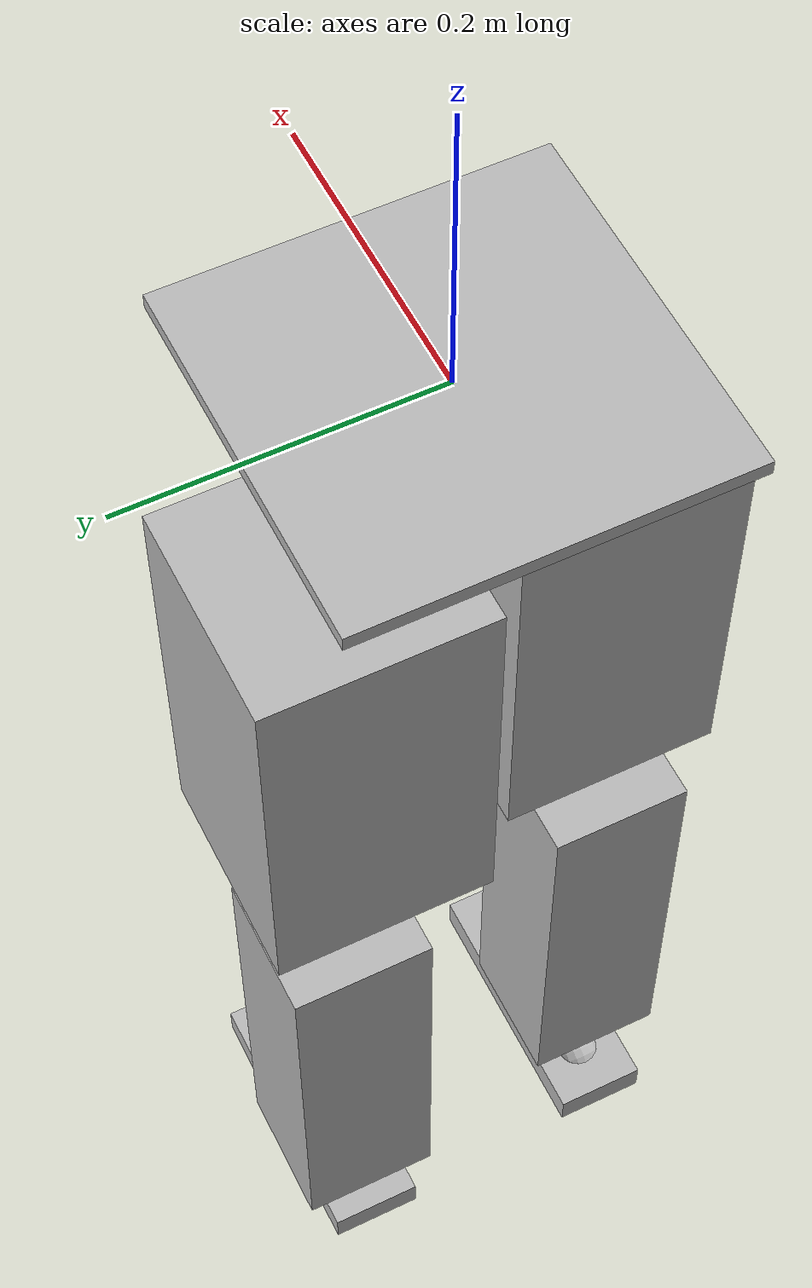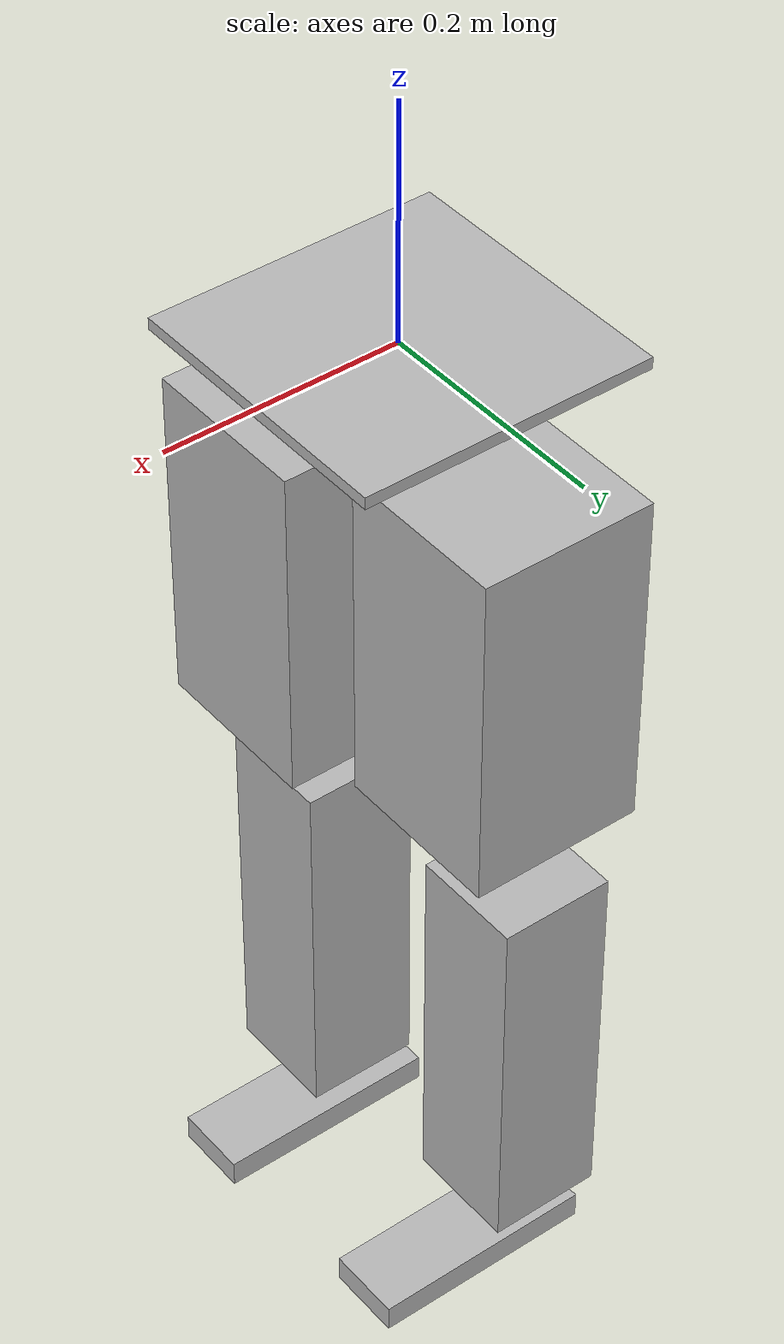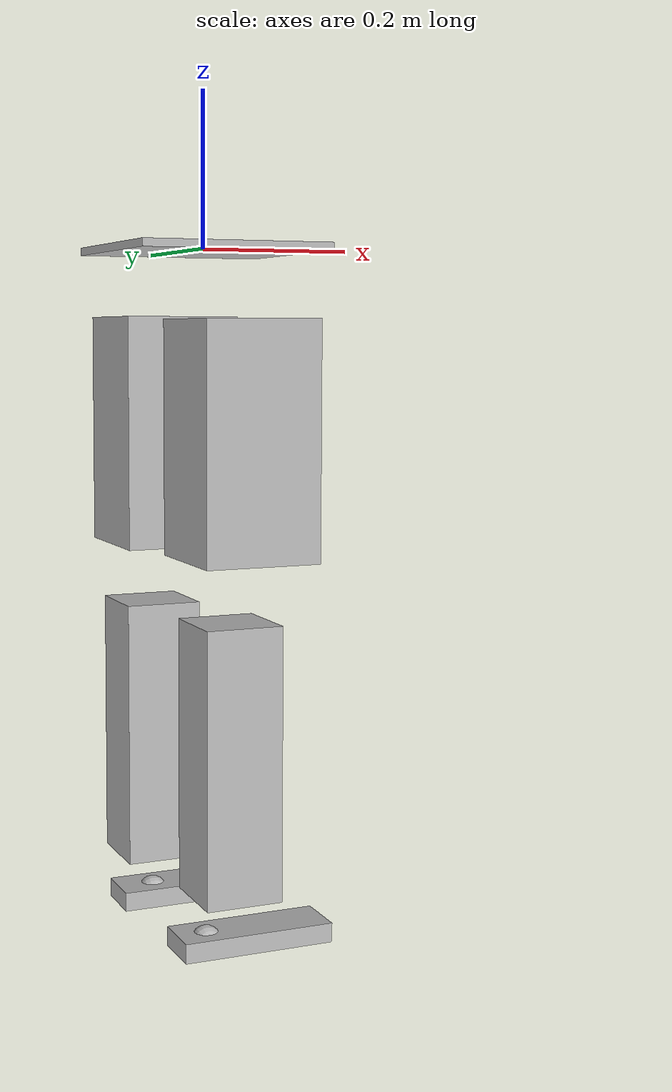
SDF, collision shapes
<sdf version='1.11'>
  <model name='oslsim'>
    <link name='base_link'>
      <inertial>
        <pose>0 0 0 0 0 0</pose>
        <mass>0.1</mass>
        <inertia>
          <ixx>9.9999999999999995e-08</ixx>
          <ixy>0</ixy>
          <ixz>0</ixz>
          <iyy>9.9999999999999995e-08</iyy>
          <iyz>0</iyz>
          <izz>9.9999999999999995e-08</izz>
        </inertia>
      </inertial>
    </link>
    <joint name='slider_joint' type='prismatic'>
      <pose relative_to='base_link'>0 0 0 0 0 0</pose>
      <parent>base_link</parent>
      <child>slider</child>
      <axis>
        <xyz>1 0 0</xyz>
        <limit>
          <lower>-10</lower>
          <upper>100</upper>
          <effort>1</effort>
          <velocity>1</velocity>
        </limit>
        <dynamics>
          <damping>0.050000000000000003</damping>
          <friction>0.10000000000000001</friction>
          <spring_reference>0</spring_reference>
          <spring_stiffness>0</spring_stiffness>
        </dynamics>
      </axis>
    </joint>
    <link name='slider'>
      <pose relative_to='slider_joint'>0 0 0 0 0 0</pose>
      <inertial>
        <pose>0 0 -0.04975124378109453 0 0 0</pose>
        <mass>0.20100000000000001</mass>
        <inertia>
          <ixx>0.001044254228855755</ixx>
          <ixy>0</ixy>
          <ixz>0</ixz>
          <iyy>0.001044254228855755</iyy>
          <iyz>0</iyz>
          <izz>0.0010417666666667001</izz>
        </inertia>
      </inertial>
      <collision name='slider_collision'>
        <pose>0 0 0 0 0 0</pose>
        <geometry>
          <box>
            <size>0.25 0.25 0.01</size>
          </box>
        </geometry>
      </collision>
    </link>
    <joint name='hip' type='revolute'>
      <pose relative_to='slider'>-0.029999999999999999 -0.014999999999999999 -0.050000000000000003 0 0 0</pose>
      <parent>slider</parent>
      <child>thigh</child>
      <axis>
        <xyz>-0.029999999999999999 1 0</xyz>
        <limit>
          <lower>-1.5700000000000001</lower>
          <upper>1.5700000000000001</upper>
          <effort>1</effort>
          <velocity>100</velocity>
        </limit>
        <dynamics>
          <damping>0.5</damping>
          <friction>0.5</friction>
          <spring_reference>0</spring_reference>
          <spring_stiffness>0</spring_stiffness>
        </dynamics>
      </axis>
    </joint>
    <link name='thigh'>
      <pose relative_to='hip'>0 0 0 0 0 0</pose>
      <inertial>
        <pose>0.0079000000000000008 0.105 -0.18514 1.5708 0 0</pose>
        <mass>0.55796999999999997</mass>
        <inertia>
          <ixx>0.045100000000000001</ixx>
          <ixy>-0.0023863000000000001</ixy>
          <ixz>0.00041502999999999999</ixz>
          <iyy>0.017843000000000001</iyy>
          <iyz>-0.00079007999999999997</iyz>
          <izz>0.046937</izz>
        </inertia>
      </inertial>
      <collision name='thigh_collision'>
        <pose>0.0079000000000000008 0.105 -0.18514 1.5708 0 0</pose>
        <geometry>
          <box>
            <size>0.14999999999999999 0.29999999999999999 0.14999999999999999</size>
          </box>
        </geometry>
      </collision>
      <visual name='thigh_visual'>
        <pose>0 0 -0.0040000000000000001 0 0 0</pose>
        <geometry>
          <mesh>
            <scale>1 1 1</scale>
            <uri>/home/pika/Hari/leg/install/ros2_jazzy/share/ros2_jazzy/meshes/thigh.dae</uri>
          </mesh>
        </geometry>
      </visual>
    </link>
    <joint name='knee' type='revolute'>
      <pose relative_to='thigh'>-0.0073765999999999997 0.057865 -0.44269999999999998 1.5708 0 0</pose>
      <parent>thigh</parent>
      <child>shin</child>
      <axis>
        <xyz>0 0 1</xyz>
        <limit>
          <lower>-1.5700000000000001</lower>
          <upper>1.5700000000000001</upper>
          <effort>1</effort>
          <velocity>100</velocity>
        </limit>
        <dynamics>
          <damping>0.5</damping>
          <friction>0.5</friction>
          <spring_reference>0</spring_reference>
          <spring_stiffness>0</spring_stiffness>
        </dynamics>
      </axis>
    </joint>
    <link name='shin'>
      <pose relative_to='knee'>0 0 0 0 0 0</pose>
      <inertial>
        <pose>0.00071104000000000002 -0.14671000000000001 -0.059447 0 0 0</pose>
        <mass>0.10000000000000001</mass>
        <inertia>
          <ixx>0.00092444999999999995</ixx>
          <ixy>-1.5017e-05</ixy>
          <ixz>-2.9596999999999998e-06</ixz>
          <iyy>0.00064851999999999998</iyy>
          <iyz>1.2704999999999999e-05</iyz>
          <izz>0.0013496000000000001</izz>
        </inertia>
      </inertial>
      <collision name='shin_collision'>
        <pose>0.00071104000000000002 -0.14671000000000001 -0.059447 0 0 0</pose>
        <geometry>
          <box>
            <size>0.10000000000000001 0.34999999999999998 0.10000000000000001</size>
          </box>
        </geometry>
      </collision>
      <visual name='shin_visual'>
        <pose>0.0060000000000000001 0.01 0.0060000000000000001 0 0 0</pose>
        <geometry>
          <mesh>
            <scale>1 1 1</scale>
            <uri>/home/pika/Hari/leg/install/ros2_jazzy/share/ros2_jazzy/meshes/shin.dae</uri>
          </mesh>
        </geometry>
      </visual>
    </link>
    <joint name='ankle' type='revolute'>
      <pose relative_to='shin'>-0.00077966999999999999 -0.31340000000000001 -0.026811000000000001 3.1415926535897931 1.5707926536359933 3.1415926535897931</pose>
      <parent>shin</parent>
      <child>foot</child>
      <axis>
        <xyz>1 0 0</xyz>
        <limit>
          <lower>-1.5700000000000001</lower>
          <upper>1.5700000000000001</upper>
          <effort>1</effort>
          <velocity>100</velocity>
        </limit>
        <dynamics>
          <damping>0.5</damping>
          <friction>0.5</friction>
          <spring_reference>0</spring_reference>
          <spring_stiffness>0</spring_stiffness>
        </dynamics>
      </axis>
    </joint>
    <link name='foot'>
      <pose relative_to='ankle'>0 0 0 0 0 0</pose>
      <inertial>
        <pose>0.029606393606393611 -0.056116883116883128 0.01308891108891109 -0.17499999999999999 0 0</pose>
        <mass>0.01001</mass>
        <inertia>
          <ixx>0.00051564850479588419</ixx>
          <ixy>2.5317254861067339e-06</ixy>
          <ixz>-1.603543123653059e-06</ixz>
          <iyy>0.00049450808750623203</iyy>
          <iyz>0.00013439906529013511</iyz>
          <izz>0.0001125164203912704</izz>
        </inertia>
      </inertial>
      <collision name='foot_collision'>
        <pose>0.029606 -0.065000000000000002 0.050000000000000003 0 0 0</pose>
        <geometry>
          <box>
            <size>0.067500000000000004 0.025000000000000001 0.20000000000000001</size>
          </box>
        </geometry>
      </collision>
      <collision name='foot_heel_collision_1'>
        <pose>0.029999999999999999 -0.065000000000000002 0 0 0 0</pose>
        <geometry>
          <sphere>
            <radius>0.02</radius>
          </sphere>
        </geometry>
      </collision>
      <visual name='foot_visual'>
        <pose>-0.0035000000000000001 0.02 0.024 0 0 0</pose>
        <geometry>
          <mesh>
            <scale>1 1 1</scale>
            <uri>/home/pika/Hari/leg/install/ros2_jazzy/share/ros2_jazzy/meshes/foot.dae</uri>
          </mesh>
        </geometry>
      </visual>
    </link>
    <joint name='osl_hip' type='revolute'>
      <pose relative_to='slider'>0 0.014999999999999999 -0.050000000000000003 0 0 0</pose>
      <parent>slider</parent>
      <child>socket</child>
      <axis>
        <xyz>0 1 0</xyz>
        <limit>
          <lower>-1.5700000000000001</lower>
          <upper>1.5700000000000001</upper>
          <effort>1</effort>
          <velocity>100</velocity>
        </limit>
        <dynamics>
          <damping>0.5</damping>
          <friction>0.5</friction>
          <spring_reference>0</spring_reference>
          <spring_stiffness>0</spring_stiffness>
        </dynamics>
      </axis>
    </joint>
    <link name='socket'>
      <pose relative_to='osl_hip'>0 0 0 0 0 0</pose>
      <inertial>
        <pose>0.0149 -0.105 -0.18906999999999999 1.5708 0 0</pose>
        <mass>0.55993000000000004</mass>
        <inertia>
          <ixx>0.045554999999999998</ixx>
          <ixy>-0.0028682999999999998</ixy>
          <ixz>-0.00027506999999999998</ixz>
          <iyy>0.018107000000000002</iyy>
          <iyz>0.0020011999999999999</iyz>
          <izz>0.047350000000000003</izz>
        </inertia>
      </inertial>
      <collision name='socket_collision'>
        <pose>0.0149 -0.105 -0.18906999999999999 1.5708 0 0</pose>
        <geometry>
          <box>
            <size>0.14999999999999999 0.29999999999999999 0.14999999999999999</size>
          </box>
        </geometry>
      </collision>
      <visual name='socket_visual'>
        <pose>0 0 0 0 0 0</pose>
        <geometry>
          <mesh>
            <scale>1 1 1</scale>
            <uri>/home/pika/Hari/leg/install/ros2_jazzy/share/ros2_jazzy/meshes/socket.dae</uri>
          </mesh>
        </geometry>
      </visual>
    </link>
    <joint name='osl_knee' type='revolute'>
      <pose relative_to='socket'>-0.0073765999999999997 -0.062441000000000003 -0.44269999999999998 1.5708 0 0</pose>
      <parent>socket</parent>
      <child>osl_shank</child>
      <axis>
        <xyz>0 0 1</xyz>
        <limit>
          <lower>-1.5700000000000001</lower>
          <upper>1.5700000000000001</upper>
          <effort>1</effort>
          <velocity>100</velocity>
        </limit>
        <dynamics>
          <damping>0.5</damping>
          <friction>0.5</friction>
          <spring_reference>0</spring_reference>
          <spring_stiffness>0</spring_stiffness>
        </dynamics>
      </axis>
    </joint>
    <link name='osl_shank'>
      <pose relative_to='osl_knee'>0 0 0 0 0 0</pose>
      <inertial>
        <pose>0.00071137000000000001 -0.14671000000000001 0.059447 0 0 0</pose>
        <mass>0.10000000000000001</mass>
        <inertia>
          <ixx>0.00092446</ixx>
          <ixy>-1.5017e-05</ixy>
          <ixz>2.9585999999999999e-06</ixz>
          <iyy>0.00064851999999999998</iyy>
          <iyz>-1.2700999999999999e-05</iyz>
          <izz>0.0013496000000000001</izz>
        </inertia>
      </inertial>
      <collision name='osl_shank_collision'>
        <pose>0.00071137000000000001 -0.14671000000000001 0.059447 0 0 0</pose>
        <geometry>
          <box>
            <size>0.10000000000000001 0.34999999999999998 0.10000000000000001</size>
          </box>
        </geometry>
        <surface>
          <contact>
            <ode/>
          </contact>
          <friction>
            <ode/>
          </friction>
        </surface>
      </collision>
      <visual name='osl_shank_visual'>
        <pose>0 0 0 0 0 0</pose>
        <geometry>
          <mesh>
            <scale>1 1 1</scale>
            <uri>/home/pika/Hari/leg/install/ros2_jazzy/share/ros2_jazzy/meshes/osl_shank.dae</uri>
          </mesh>
        </geometry>
      </visual>
      <sensor name='osl_foot_imu' type='imu'>
        <always_on>true</always_on>
        <update_rate>50</update_rate>
        <visualize>true</visualize>
        <topic>imu/osl_shank</topic>
        <pose>0 0 0 0 0 0</pose>
        <imu/>
      </sensor>
    </link>
    <joint name='osl_ankle' type='revolute'>
      <pose relative_to='osl_shank'>-0.00077966999999999999 -0.31340000000000001 0.026811000000000001 0 0 0</pose>
      <parent>osl_shank</parent>
      <child>osl_foot</child>
      <axis>
        <xyz>1 0 0</xyz>
        <limit>
          <lower>-1.5700000000000001</lower>
          <upper>1.5700000000000001</upper>
          <effort>1</effort>
          <velocity>100</velocity>
        </limit>
        <dynamics>
          <damping>0.5</damping>
          <friction>0.5</friction>
          <spring_reference>0</spring_reference>
          <spring_stiffness>0</spring_stiffness>
        </dynamics>
      </axis>
    </joint>
    <link name='osl_foot'>
      <pose relative_to='osl_ankle'>0 0 0 0 0 0</pose>
      <inertial>
        <pose>0.029546453546453549 -0.056116883116883128 0.033098901098901103 -2.9665926535965332 -1.5707926536662187 3.1415926535897931</pose>
        <mass>0.11001</mass>
        <inertia>
          <ixx>0.0005156922831458542</ixx>
          <ixy>-2.5309497462756148e-06</ixy>
          <ixz>-1.600033104818656e-06</ixz>
          <iyy>0.00049455235300213739</iyy>
          <iyz>-0.0001344009759749678</iyz>
          <izz>0.0001125161223995408</izz>
        </inertia>
      </inertial>
      <collision name='osl_foot_collision'>
        <pose>0.029999999999999999 -0.065000000000000002 0.029999999999999999 0 -1.5707963267948966 0</pose>
        <geometry>
          <box>
            <size>0.067500000000000004 0.025000000000000001 0.20000000000000001</size>
          </box>
        </geometry>
        <surface>
          <contact>
            <ode/>
          </contact>
          <friction>
            <ode/>
          </friction>
        </surface>
      </collision>
      <collision name='osl_foot_loadcell_link_collision_1_collision_1'>
        <pose>-0.029999999999999999 -0.065000000000000002 0.029999999999999999 0 0 0</pose>
        <geometry>
          <sphere>
            <radius>0.02</radius>
          </sphere>
        </geometry>
        <surface>
          <contact>
            <ode/>
          </contact>
          <friction>
            <ode/>
          </friction>
        </surface>
      </collision>
      <visual name='osl_foot_visual'>
        <pose>0 0 0 -2.966600639533743 -1.5707963267948966 0</pose>
        <geometry>
          <mesh>
            <scale>1 1 1</scale>
            <uri>/home/pika/Hari/leg/install/ros2_jazzy/share/ros2_jazzy/meshes/osl_foot.dae</uri>
          </mesh>
        </geometry>
      </visual>
      <sensor name='osl_foot_imu' type='imu'>
        <always_on>true</always_on>
        <update_rate>50</update_rate>
        <topic>imu/foot</topic>
        <imu/>
      </sensor>
      <sensor name='sensor_contact' type='contact'>
        <always_on>true</always_on>
        <update_rate>200</update_rate>
        <topic>foot_contact</topic>
        <contact>
          <collision>osl_foot_loadcell_link_collision_1_collision_1</collision>
        </contact>
        <pose>-0.029999999999999999 -0.065000000000000002 0.029999999999999999 0 0 0</pose>
      </sensor>
    </link>
    <plugin filename="gz-sim-touchplugin-system"
            name="gz::sim::systems::TouchPlugin">
        <target>ground_plane</target>
        <namespace>foot</namespace>
        <time>0.001</time>
        <enabled>true</enabled>
    </plugin>
    <plugin name='gz_ros2_control::GazeboSimROS2ControlPlugin' filename='gz_ros2_control-system'>
      <parameters>/home/pika/Hari/leg/install/ros2_jazzy/share/ros2_jazzy/config/controllers.yaml</parameters>
    </plugin>
    <plugin name='gz::sim::systems::Imu' filename='gz-sim-imu-system'/>
    <plugin name='gz::sim::systems::Contact' filename='gz-sim-contact-system'/>
    <frame name='root_joint' attached_to='entity'>
      <pose>0 0 0 0 0 0</pose>
    </frame>
    <frame name='body' attached_to='root_joint'>
      <pose>0 0 0 0 0 0</pose>
    </frame>
    <frame name='foot_heel_joint' attached_to='foot'>
      <pose>0.029999999999999999 -0.065000000000000002 0 0 0 0</pose>
    </frame>
    <frame name='foot_heel' attached_to='foot_heel_joint'>
      <pose>0 0 0 0 0 0</pose>
    </frame>
    <frame name='osl_foot_loadcell_link_joint' attached_to='osl_foot'>
      <pose>-0.029999999999999999 -0.065000000000000002 0.029999999999999999 0 0 0</pose>
    </frame>
    <frame name='osl_foot_loadcell_link' attached_to='osl_foot_loadcell_link_joint'>
      <pose>0 0 0 0 0 0</pose>
    </frame>
    <frame name='entity_joint' attached_to='slider'>
      <pose>0 0 -0.050000000000000003 0 0 0</pose>
    </frame>
    <frame name='entity' attached_to='entity_joint'>
      <pose>0 0 0 0 0 0</pose>
    </frame>
  </model>
</sdf>
